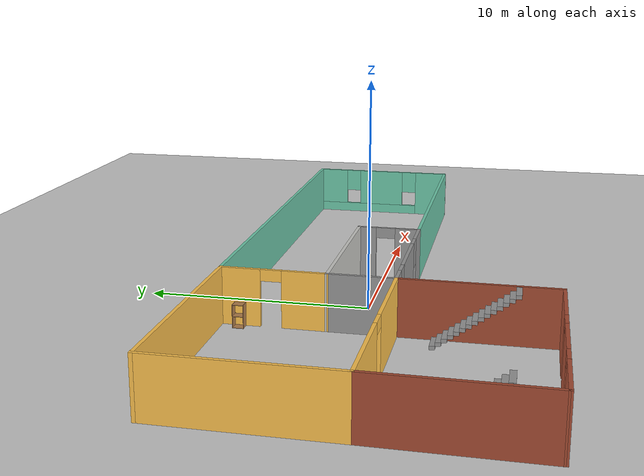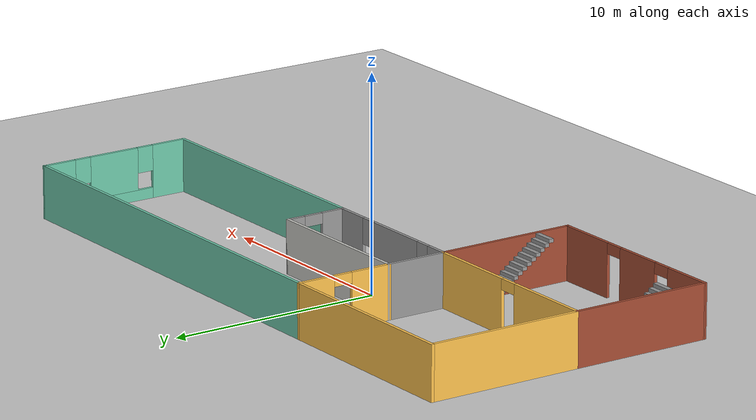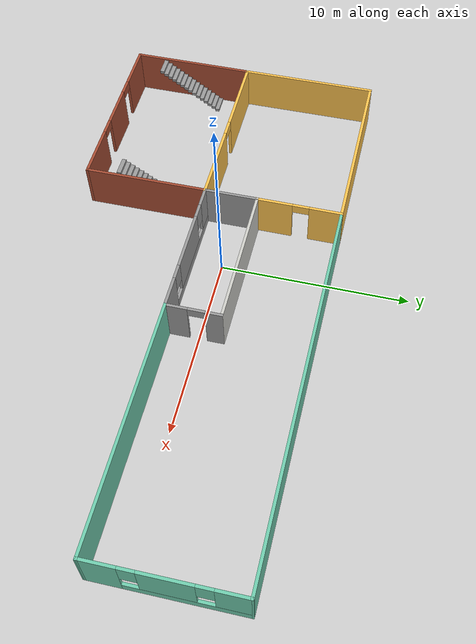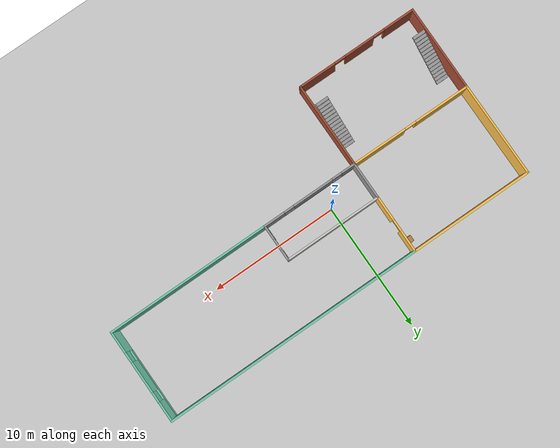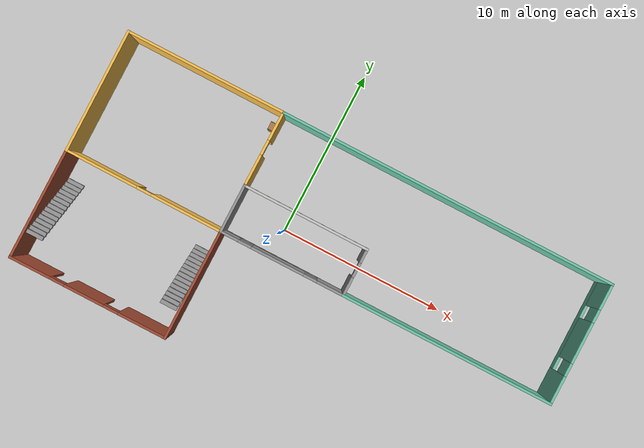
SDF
<sdf version="1.6">
 <world name="default">
  <model name="ground_plane">
   <static>1</static>
   <link name="link">
    <collision name="collision">
     <geometry><plane><normal>0 0 1</normal><size>100 100</size></plane></geometry>
     <surface>
      <contact><collide_bitmask>65535</collide_bitmask></contact>
      <friction><ode><mu>100</mu><mu2>50</mu2></ode></friction>
     </surface>
    </collision>
    <visual name="visual">
     <cast_shadows>0</cast_shadows>
     <geometry><plane><normal>0 0 1</normal><size>100 100</size></plane></geometry>
     <material>
      <script><uri>file://media/materials/scripts/gazebo.material</uri><name>Gazebo/Grey</name></script>
     </material>
    </visual>
   </link>
  </model>
  <model name="Untitled">
   <pose>2.38494 -1.21436 0 0 -0 0</pose>
   <link name="Stairs_0">
    <visual name="Stairs_0_Visual_0">
     <pose>-14.3705 -2.00287 0.083333 0 -0 0</pose>
     <geometry><box><size>1 0.233333 0.166667</size></box></geometry>
     <material>
      <script><uri>file://media/materials/scripts/gazebo.material</uri><name>Gazebo/Grey</name></script>
      <ambient>1 1 1 1</ambient>
     </material>
     <meta><layer>0</layer></meta>
    </visual>
    <collision name="Stairs_0_Collision_0">
     <geometry><box><size>1 0.233333 0.166667</size></box></geometry>
     <pose>-14.3705 -2.00287 0.083333 0 -0 0</pose>
    </collision>
    <visual name="Stairs_0_Visual_1">
     <pose>-14.3705 -2.2362 0.25 0 -0 0</pose>
     <geometry><box><size>1 0.233333 0.166667</size></box></geometry>
     <material>
      <script><uri>file://media/materials/scripts/gazebo.material</uri><name>Gazebo/Grey</name></script>
      <ambient>1 1 1 1</ambient>
     </material>
     <meta><layer>0</layer></meta>
    </visual>
    <collision name="Stairs_0_Collision_1">
     <geometry><box><size>1 0.233333 0.166667</size></box></geometry>
     <pose>-14.3705 -2.2362 0.25 0 -0 0</pose>
    </collision>
    <visual name="Stairs_0_Visual_2">
     <pose>-14.3705 -2.46954 0.416667 0 -0 0</pose>
     <geometry><box><size>1 0.233333 0.166667</size></box></geometry>
     <material>
      <script><uri>file://media/materials/scripts/gazebo.material</uri><name>Gazebo/Grey</name></script>
      <ambient>1 1 1 1</ambient>
     </material>
     <meta><layer>0</layer></meta>
    </visual>
    <collision name="Stairs_0_Collision_2">
     <geometry><box><size>1 0.233333 0.166667</size></box></geometry>
     <pose>-14.3705 -2.46954 0.416667 0 -0 0</pose>
    </collision>
    <visual name="Stairs_0_Visual_3">
     <pose>-14.3705 -2.70287 0.583333 0 -0 0</pose>
     <geometry><box><size>1 0.233333 0.166667</size></box></geometry>
     <material>
      <script><uri>file://media/materials/scripts/gazebo.material</uri><name>Gazebo/Grey</name></script>
      <ambient>1 1 1 1</ambient>
     </material>
     <meta><layer>0</layer></meta>
    </visual>
    <collision name="Stairs_0_Collision_3">
     <geometry><box><size>1 0.233333 0.166667</size></box></geometry>
     <pose>-14.3705 -2.70287 0.583333 0 -0 0</pose>
    </collision>
    <visual name="Stairs_0_Visual_4">
     <pose>-14.3705 -2.9362 0.75 0 -0 0</pose>
     <geometry><box><size>1 0.233333 0.166667</size></box></geometry>
     <material>
      <script><uri>file://media/materials/scripts/gazebo.material</uri><name>Gazebo/Grey</name></script>
      <ambient>1 1 1 1</ambient>
     </material>
     <meta><layer>0</layer></meta>
    </visual>
    <collision name="Stairs_0_Collision_4">
     <geometry><box><size>1 0.233333 0.166667</size></box></geometry>
     <pose>-14.3705 -2.9362 0.75 0 -0 0</pose>
    </collision>
    <visual name="Stairs_0_Visual_5">
     <pose>-14.3705 -3.16954 0.916667 0 -0 0</pose>
     <geometry><box><size>1 0.233333 0.166667</size></box></geometry>
     <material>
      <script><uri>file://media/materials/scripts/gazebo.material</uri><name>Gazebo/Grey</name></script>
      <ambient>1 1 1 1</ambient>
     </material>
     <meta><layer>0</layer></meta>
    </visual>
    <collision name="Stairs_0_Collision_5">
     <geometry><box><size>1 0.233333 0.166667</size></box></geometry>
     <pose>-14.3705 -3.16954 0.916667 0 -0 0</pose>
    </collision>
    <visual name="Stairs_0_Visual_6">
     <pose>-14.3705 -3.40287 1.08333 0 -0 0</pose>
     <geometry><box><size>1 0.233333 0.166667</size></box></geometry>
     <material>
      <script><uri>file://media/materials/scripts/gazebo.material</uri><name>Gazebo/Grey</name></script>
      <ambient>1 1 1 1</ambient>
     </material>
     <meta><layer>0</layer></meta>
    </visual>
    <collision name="Stairs_0_Collision_6">
     <geometry><box><size>1 0.233333 0.166667</size></box></geometry>
     <pose>-14.3705 -3.40287 1.08333 0 -0 0</pose>
    </collision>
    <visual name="Stairs_0_Visual_7">
     <pose>-14.3705 -3.6362 1.25 0 -0 0</pose>
     <geometry><box><size>1 0.233333 0.166667</size></box></geometry>
     <material>
      <script><uri>file://media/materials/scripts/gazebo.material</uri><name>Gazebo/Grey</name></script>
      <ambient>1 1 1 1</ambient>
     </material>
     <meta><layer>0</layer></meta>
    </visual>
    <collision name="Stairs_0_Collision_7">
     <geometry><box><size>1 0.233333 0.166667</size></box></geometry>
     <pose>-14.3705 -3.6362 1.25 0 -0 0</pose>
    </collision>
    <visual name="Stairs_0_Visual_8">
     <pose>-14.3705 -3.86953 1.41667 0 -0 0</pose>
     <geometry><box><size>1 0.233333 0.166667</size></box></geometry>
     <material>
      <script><uri>file://media/materials/scripts/gazebo.material</uri><name>Gazebo/Grey</name></script>
      <ambient>1 1 1 1</ambient>
     </material>
     <meta><layer>0</layer></meta>
    </visual>
    <collision name="Stairs_0_Collision_8">
     <geometry><box><size>1 0.233333 0.166667</size></box></geometry>
     <pose>-14.3705 -3.86953 1.41667 0 -0 0</pose>
    </collision>
    <visual name="Stairs_0_Visual_9">
     <pose>-14.3705 -4.10287 1.58333 0 -0 0</pose>
     <geometry><box><size>1 0.233333 0.166667</size></box></geometry>
     <material>
      <script><uri>file://media/materials/scripts/gazebo.material</uri><name>Gazebo/Grey</name></script>
      <ambient>1 1 1 1</ambient>
     </material>
     <meta><layer>0</layer></meta>
    </visual>
    <collision name="Stairs_0_Collision_9">
     <geometry><box><size>1 0.233333 0.166667</size></box></geometry>
     <pose>-14.3705 -4.10287 1.58333 0 -0 0</pose>
    </collision>
    <visual name="Stairs_0_Visual_10">
     <pose>-14.3705 -4.3362 1.75 0 -0 0</pose>
     <geometry><box><size>1 0.233333 0.166667</size></box></geometry>
     <material>
      <script><uri>file://media/materials/scripts/gazebo.material</uri><name>Gazebo/Grey</name></script>
      <ambient>1 1 1 1</ambient>
     </material>
     <meta><layer>0</layer></meta>
    </visual>
    <collision name="Stairs_0_Collision_10">
     <geometry><box><size>1 0.233333 0.166667</size></box></geometry>
     <pose>-14.3705 -4.3362 1.75 0 -0 0</pose>
    </collision>
    <visual name="Stairs_0_Visual_11">
     <pose>-14.3705 -4.56954 1.91667 0 -0 0</pose>
     <geometry><box><size>1 0.233333 0.166667</size></box></geometry>
     <material>
      <script><uri>file://media/materials/scripts/gazebo.material</uri><name>Gazebo/Grey</name></script>
      <ambient>1 1 1 1</ambient>
     </material>
     <meta><layer>0</layer></meta>
    </visual>
    <collision name="Stairs_0_Collision_11">
     <geometry><box><size>1 0.233333 0.166667</size></box></geometry>
     <pose>-14.3705 -4.56954 1.91667 0 -0 0</pose>
    </collision>
    <visual name="Stairs_0_Visual_12">
     <pose>-14.3705 -4.80287 2.08333 0 -0 0</pose>
     <geometry><box><size>1 0.233333 0.166667</size></box></geometry>
     <material>
      <script><uri>file://media/materials/scripts/gazebo.material</uri><name>Gazebo/Grey</name></script>
      <ambient>1 1 1 1</ambient>
     </material>
     <meta><layer>0</layer></meta>
    </visual>
    <collision name="Stairs_0_Collision_12">
     <geometry><box><size>1 0.233333 0.166667</size></box></geometry>
     <pose>-14.3705 -4.80287 2.08333 0 -0 0</pose>
    </collision>
    <visual name="Stairs_0_Visual_13">
     <pose>-14.3705 -5.0362 2.25 0 -0 0</pose>
     <geometry><box><size>1 0.233333 0.166667</size></box></geometry>
     <material>
      <script><uri>file://media/materials/scripts/gazebo.material</uri><name>Gazebo/Grey</name></script>
      <ambient>1 1 1 1</ambient>
     </material>
     <meta><layer>0</layer></meta>
    </visual>
    <collision name="Stairs_0_Collision_13">
     <geometry><box><size>1 0.233333 0.166667</size></box></geometry>
     <pose>-14.3705 -5.0362 2.25 0 -0 0</pose>
    </collision>
    <visual name="Stairs_0_Visual_14">
     <pose>-14.3705 -5.26954 2.41667 0 -0 0</pose>
     <geometry><box><size>1 0.233333 0.166667</size></box></geometry>
     <material>
      <script><uri>file://media/materials/scripts/gazebo.material</uri><name>Gazebo/Grey</name></script>
      <ambient>1 1 1 1</ambient>
     </material>
     <meta><layer>0</layer></meta>
    </visual>
    <collision name="Stairs_0_Collision_14">
     <geometry><box><size>1 0.233333 0.166667</size></box></geometry>
     <pose>-14.3705 -5.26954 2.41667 0 -0 0</pose>
    </collision>
   </link>
   <link name="Stairs_1">
    <visual name="Stairs_1_Visual_0">
     <pose>-6.07758 -2.00287 0.083333 0 -0 0</pose>
     <geometry><box><size>1 0.233333 0.166667</size></box></geometry>
     <material>
      <script><uri>file://media/materials/scripts/gazebo.material</uri><name>Gazebo/Grey</name></script>
      <ambient>1 1 1 1</ambient>
     </material>
     <meta><layer>0</layer></meta>
    </visual>
    <collision name="Stairs_1_Collision_0">
     <geometry><box><size>1 0.233333 0.166667</size></box></geometry>
     <pose>-6.07758 -2.00287 0.083333 0 -0 0</pose>
    </collision>
    <visual name="Stairs_1_Visual_1">
     <pose>-6.07758 -2.2362 0.25 0 -0 0</pose>
     <geometry><box><size>1 0.233333 0.166667</size></box></geometry>
     <material>
      <script><uri>file://media/materials/scripts/gazebo.material</uri><name>Gazebo/Grey</name></script>
      <ambient>1 1 1 1</ambient>
     </material>
     <meta><layer>0</layer></meta>
    </visual>
    <collision name="Stairs_1_Collision_1">
     <geometry><box><size>1 0.233333 0.166667</size></box></geometry>
     <pose>-6.07758 -2.2362 0.25 0 -0 0</pose>
    </collision>
    <visual name="Stairs_1_Visual_2">
     <pose>-6.07758 -2.46954 0.416667 0 -0 0</pose>
     <geometry><box><size>1 0.233333 0.166667</size></box></geometry>
     <material>
      <script><uri>file://media/materials/scripts/gazebo.material</uri><name>Gazebo/Grey</name></script>
      <ambient>1 1 1 1</ambient>
     </material>
     <meta><layer>0</layer></meta>
    </visual>
    <collision name="Stairs_1_Collision_2">
     <geometry><box><size>1 0.233333 0.166667</size></box></geometry>
     <pose>-6.07758 -2.46954 0.416667 0 -0 0</pose>
    </collision>
    <visual name="Stairs_1_Visual_3">
     <pose>-6.07758 -2.70287 0.583333 0 -0 0</pose>
     <geometry><box><size>1 0.233333 0.166667</size></box></geometry>
     <material>
      <script><uri>file://media/materials/scripts/gazebo.material</uri><name>Gazebo/Grey</name></script>
      <ambient>1 1 1 1</ambient>
     </material>
     <meta><layer>0</layer></meta>
    </visual>
    <collision name="Stairs_1_Collision_3">
     <geometry><box><size>1 0.233333 0.166667</size></box></geometry>
     <pose>-6.07758 -2.70287 0.583333 0 -0 0</pose>
    </collision>
    <visual name="Stairs_1_Visual_4">
     <pose>-6.07758 -2.9362 0.75 0 -0 0</pose>
     <geometry><box><size>1 0.233333 0.166667</size></box></geometry>
     <material>
      <script><uri>file://media/materials/scripts/gazebo.material</uri><name>Gazebo/Grey</name></script>
      <ambient>1 1 1 1</ambient>
     </material>
     <meta><layer>0</layer></meta>
    </visual>
    <collision name="Stairs_1_Collision_4">
     <geometry><box><size>1 0.233333 0.166667</size></box></geometry>
     <pose>-6.07758 -2.9362 0.75 0 -0 0</pose>
    </collision>
    <visual name="Stairs_1_Visual_5">
     <pose>-6.07758 -3.16954 0.916667 0 -0 0</pose>
     <geometry><box><size>1 0.233333 0.166667</size></box></geometry>
     <material>
      <script><uri>file://media/materials/scripts/gazebo.material</uri><name>Gazebo/Grey</name></script>
      <ambient>1 1 1 1</ambient>
     </material>
     <meta><layer>0</layer></meta>
    </visual>
    <collision name="Stairs_1_Collision_5">
     <geometry><box><size>1 0.233333 0.166667</size></box></geometry>
     <pose>-6.07758 -3.16954 0.916667 0 -0 0</pose>
    </collision>
    <visual name="Stairs_1_Visual_6">
     <pose>-6.07758 -3.40287 1.08333 0 -0 0</pose>
     <geometry><box><size>1 0.233333 0.166667</size></box></geometry>
     <material>
      <script><uri>file://media/materials/scripts/gazebo.material</uri><name>Gazebo/Grey</name></script>
      <ambient>1 1 1 1</ambient>
     </material>
     <meta><layer>0</layer></meta>
    </visual>
    <collision name="Stairs_1_Collision_6">
     <geometry><box><size>1 0.233333 0.166667</size></box></geometry>
     <pose>-6.07758 -3.40287 1.08333 0 -0 0</pose>
    </collision>
    <visual name="Stairs_1_Visual_7">
     <pose>-6.07758 -3.6362 1.25 0 -0 0</pose>
     <geometry><box><size>1 0.233333 0.166667</size></box></geometry>
     <material>
      <script><uri>file://media/materials/scripts/gazebo.material</uri><name>Gazebo/Grey</name></script>
      <ambient>1 1 1 1</ambient>
     </material>
     <meta><layer>0</layer></meta>
    </visual>
    <collision name="Stairs_1_Collision_7">
     <geometry><box><size>1 0.233333 0.166667</size></box></geometry>
     <pose>-6.07758 -3.6362 1.25 0 -0 0</pose>
    </collision>
    <visual name="Stairs_1_Visual_8">
     <pose>-6.07758 -3.86953 1.41667 0 -0 0</pose>
     <geometry><box><size>1 0.233333 0.166667</size></box></geometry>
     <material>
      <script><uri>file://media/materials/scripts/gazebo.material</uri><name>Gazebo/Grey</name></script>
      <ambient>1 1 1 1</ambient>
     </material>
     <meta><layer>0</layer></meta>
    </visual>
    <collision name="Stairs_1_Collision_8">
     <geometry><box><size>1 0.233333 0.166667</size></box></geometry>
     <pose>-6.07758 -3.86953 1.41667 0 -0 0</pose>
    </collision>
    <visual name="Stairs_1_Visual_9">
     <pose>-6.07758 -4.10287 1.58333 0 -0 0</pose>
     <geometry><box><size>1 0.233333 0.166667</size></box></geometry>
     <material>
      <script><uri>file://media/materials/scripts/gazebo.material</uri><name>Gazebo/Grey</name></script>
      <ambient>1 1 1 1</ambient>
     </material>
     <meta><layer>0</layer></meta>
    </visual>
    <collision name="Stairs_1_Collision_9">
     <geometry><box><size>1 0.233333 0.166667</size></box></geometry>
     <pose>-6.07758 -4.10287 1.58333 0 -0 0</pose>
    </collision>
    <visual name="Stairs_1_Visual_10">
     <pose>-6.07758 -4.3362 1.75 0 -0 0</pose>
     <geometry><box><size>1 0.233333 0.166667</size></box></geometry>
     <material>
      <script><uri>file://media/materials/scripts/gazebo.material</uri><name>Gazebo/Grey</name></script>
      <ambient>1 1 1 1</ambient>
     </material>
     <meta><layer>0</layer></meta>
    </visual>
    <collision name="Stairs_1_Collision_10">
     <geometry><box><size>1 0.233333 0.166667</size></box></geometry>
     <pose>-6.07758 -4.3362 1.75 0 -0 0</pose>
    </collision>
    <visual name="Stairs_1_Visual_11">
     <pose>-6.07758 -4.56954 1.91667 0 -0 0</pose>
     <geometry><box><size>1 0.233333 0.166667</size></box></geometry>
     <material>
      <script><uri>file://media/materials/scripts/gazebo.material</uri><name>Gazebo/Grey</name></script>
      <ambient>1 1 1 1</ambient>
     </material>
     <meta><layer>0</layer></meta>
    </visual>
    <collision name="Stairs_1_Collision_11">
     <geometry><box><size>1 0.233333 0.166667</size></box></geometry>
     <pose>-6.07758 -4.56954 1.91667 0 -0 0</pose>
    </collision>
    <visual name="Stairs_1_Visual_12">
     <pose>-6.07758 -4.80287 2.08333 0 -0 0</pose>
     <geometry><box><size>1 0.233333 0.166667</size></box></geometry>
     <material>
      <script><uri>file://media/materials/scripts/gazebo.material</uri><name>Gazebo/Grey</name></script>
      <ambient>1 1 1 1</ambient>
     </material>
     <meta><layer>0</layer></meta>
    </visual>
    <collision name="Stairs_1_Collision_12">
     <geometry><box><size>1 0.233333 0.166667</size></box></geometry>
     <pose>-6.07758 -4.80287 2.08333 0 -0 0</pose>
    </collision>
    <visual name="Stairs_1_Visual_13">
     <pose>-6.07758 -5.0362 2.25 0 -0 0</pose>
     <geometry><box><size>1 0.233333 0.166667</size></box></geometry>
     <material>
      <script><uri>file://media/materials/scripts/gazebo.material</uri><name>Gazebo/Grey</name></script>
      <ambient>1 1 1 1</ambient>
     </material>
     <meta><layer>0</layer></meta>
    </visual>
    <collision name="Stairs_1_Collision_13">
     <geometry><box><size>1 0.233333 0.166667</size></box></geometry>
     <pose>-6.07758 -5.0362 2.25 0 -0 0</pose>
    </collision>
    <visual name="Stairs_1_Visual_14">
     <pose>-6.07758 -5.26954 2.41667 0 -0 0</pose>
     <geometry><box><size>1 0.233333 0.166667</size></box></geometry>
     <material>
      <script><uri>file://media/materials/scripts/gazebo.material</uri><name>Gazebo/Grey</name></script>
      <ambient>1 1 1 1</ambient>
     </material>
     <meta><layer>0</layer></meta>
    </visual>
    <collision name="Stairs_1_Collision_14">
     <geometry><box><size>1 0.233333 0.166667</size></box></geometry>
     <pose>-6.07758 -5.26954 2.41667 0 -0 0</pose>
    </collision>
   </link>
   <link name="Wall_0">
    <pose>-1.62494 -0.395642 0 0 -0 3.14159</pose>
    <visual name="Wall_0_Visual_0">
     <pose>-3.01432 0 1.25 0 -0 0</pose>
     <geometry><box><size>1.72136 0.15 2.5</size></box></geometry>
     <material>
      <script><uri>file://media/materials/scripts/gazebo.material</uri><name>Gazebo/Grey</name></script>
      <ambient>1 1 1 1</ambient>
     </material>
     <meta><layer>0</layer></meta>
    </visual>
    <collision name="Wall_0_Collision_0">
     <geometry><box><size>1.72136 0.15 2.5</size></box></geometry>
     <pose>-3.01432 0 1.25 0 -0 0</pose>
    </collision>
    <visual name="Wall_0_Visual_1">
     <pose>0.860678 0 0.25 0 -0 0</pose>
     <geometry><box><size>6.02864 0.15 0.5</size></box></geometry>
     <material>
      <script><uri>file://media/materials/scripts/gazebo.material</uri><name>Gazebo/Grey</name></script>
      <ambient>1 1 1 1</ambient>
     </material>
     <meta><layer>0</layer></meta>
    </visual>
    <collision name="Wall_0_Collision_1">
     <geometry><box><size>6.02864 0.15 0.5</size></box></geometry>
     <pose>0.860678 0 0.25 0 -0 0</pose>
    </collision>
    <visual name="Wall_0_Visual_2">
     <pose>0.279452 0 1.5 0 -0 0</pose>
     <geometry><box><size>3.26619 0.15 2</size></box></geometry>
     <material>
      <script><uri>file://media/materials/scripts/gazebo.material</uri><name>Gazebo/Grey</name></script>
      <ambient>1 1 1 1</ambient>
     </material>
     <meta><layer>0</layer></meta>
    </visual>
    <collision name="Wall_0_Collision_2">
     <geometry><box><size>3.26619 0.15 2</size></box></geometry>
     <pose>0.279452 0 1.5 0 -0 0</pose>
    </collision>
    <visual name="Wall_0_Visual_3">
     <pose>3.29377 0 1.5 0 -0 0</pose>
     <geometry><box><size>1.16245 0.15 2</size></box></geometry>
     <material>
      <script><uri>file://media/materials/scripts/gazebo.material</uri><name>Gazebo/Grey</name></script>
      <ambient>1 1 1 1</ambient>
     </material>
     <meta><layer>0</layer></meta>
    </visual>
    <collision name="Wall_0_Collision_3">
     <geometry><box><size>1.16245 0.15 2</size></box></geometry>
     <pose>3.29377 0 1.5 0 -0 0</pose>
    </collision>
    <visual name="Wall_0_Visual_4">
     <pose>-1.75364 0 1.9 0 -0 0</pose>
     <geometry><box><size>0.8 0.15 1.2</size></box></geometry>
     <material>
      <script><uri>file://media/materials/scripts/gazebo.material</uri><name>Gazebo/Grey</name></script>
      <ambient>1 1 1 1</ambient>
     </material>
     <meta><layer>0</layer></meta>
    </visual>
    <collision name="Wall_0_Collision_4">
     <geometry><box><size>0.8 0.15 1.2</size></box></geometry>
     <pose>-1.75364 0 1.9 0 -0 0</pose>
    </collision>
    <visual name="Wall_0_Visual_5">
     <pose>2.31255 0 1.9 0 -0 0</pose>
     <geometry><box><size>0.8 0.15 1.2</size></box></geometry>
     <material>
      <script><uri>file://media/materials/scripts/gazebo.material</uri><name>Gazebo/Grey</name></script>
      <ambient>1 1 1 1</ambient>
     </material>
     <meta><layer>0</layer></meta>
    </visual>
    <collision name="Wall_0_Collision_5">
     <geometry><box><size>0.8 0.15 1.2</size></box></geometry>
     <pose>2.31255 0 1.9 0 -0 0</pose>
    </collision>
   </link>
   <link name="Wall_1">
    <collision name="Wall_1_Collision">
     <geometry><box><size>3 0.15 2.5</size></box></geometry>
     <pose>0 0 1.25 0 -0 0</pose>
    </collision>
    <visual name="Wall_1_Visual">
     <pose>0 0 1.25 0 -0 0</pose>
     <geometry><box><size>3 0.15 2.5</size></box></geometry>
     <material>
      <script><uri>file://media/materials/scripts/gazebo.material</uri><name>Gazebo/Grey</name></script>
      <ambient>1 1 1 1</ambient>
     </material>
     <meta><layer>0</layer></meta>
    </visual>
    <pose>-5.42493 1.02936 0 0 -0 1.5708</pose>
   </link>
   <link name="Wall_10">
    <collision name="Wall_10_Collision">
     <geometry><box><size>7.5 0.15 2.5</size></box></geometry>
     <pose>0 0 1.25 0 -0 0</pose>
    </collision>
    <visual name="Wall_10_Visual">
     <pose>0 0 1.25 0 -0 0</pose>
     <geometry><box><size>7.5 0.15 2.5</size></box></geometry>
     <material>
      <script><uri>file://media/materials/scripts/gazebo.material</uri><name>Gazebo/Grey</name></script>
      <ambient>1 0.764706 0.305882 1</ambient>
     </material>
     <meta><layer>0</layer></meta>
    </visual>
    <pose>-14.9969 3.32017 0 0 0 -1.5708</pose>
   </link>
   <link name="Wall_11">
    <pose>-10.2109 -0.375234 0 0 0 -0.004264</pose>
    <visual name="Wall_11_Visual_0">
     <pose>-2.64881 0 1.25 0 -0 0</pose>
     <geometry><box><size>4.42444 0.15 2.5</size></box></geometry>
     <material>
      <script><uri>file://media/materials/scripts/gazebo.material</uri><name>Gazebo/Grey</name></script>
      <ambient>1 0.764706 0.305882 1</ambient>
     </material>
     <meta><layer>0</layer></meta>
    </visual>
    <collision name="Wall_11_Collision_0">
     <geometry><box><size>4.42444 0.15 2.5</size></box></geometry>
     <pose>-2.64881 0 1.25 0 -0 0</pose>
    </collision>
    <visual name="Wall_11_Visual_1">
     <pose>2.66222 0 1.25 0 -0 0</pose>
     <geometry><box><size>4.39762 0.15 2.5</size></box></geometry>
     <material>
      <script><uri>file://media/materials/scripts/gazebo.material</uri><name>Gazebo/Grey</name></script>
      <ambient>1 0.764706 0.305882 1</ambient>
     </material>
     <meta><layer>0</layer></meta>
    </visual>
    <collision name="Wall_11_Collision_1">
     <geometry><box><size>4.39762 0.15 2.5</size></box></geometry>
     <pose>2.66222 0 1.25 0 -0 0</pose>
    </collision>
    <visual name="Wall_11_Visual_2">
     <pose>0.013411 0 2.25 0 -0 0</pose>
     <geometry><box><size>0.9 0.15 0.5</size></box></geometry>
     <material>
      <script><uri>file://media/materials/scripts/gazebo.material</uri><name>Gazebo/Grey</name></script>
      <ambient>1 0.764706 0.305882 1</ambient>
     </material>
     <meta><layer>0</layer></meta>
    </visual>
    <collision name="Wall_11_Collision_2">
     <geometry><box><size>0.9 0.15 0.5</size></box></geometry>
     <pose>0.013411 0 2.25 0 -0 0</pose>
    </collision>
   </link>
   <link name="Wall_12">
    <collision name="Wall_12_Collision">
     <geometry><box><size>6.75 0.15 2.5</size></box></geometry>
     <pose>0 0 1.25 0 -0 0</pose>
    </collision>
    <visual name="Wall_12_Visual">
     <pose>0 0 1.25 0 -0 0</pose>
     <geometry><box><size>6.75 0.15 2.5</size></box></geometry>
     <material>
      <script><uri>file://media/materials/scripts/gazebo.material</uri><name>Gazebo/Bricks</name></script>
      <ambient>1 1 1 1</ambient>
     </material>
     <meta><layer>0</layer></meta>
    </visual>
    <pose>-5.42493 -3.69564 0 0 0 -1.5708</pose>
   </link>
   <link name="Wall_13">
    <pose>-10.2249 -6.99564 0 0 -0 3.14159</pose>
    <visual name="Wall_13_Visual_0">
     <pose>-3.37186 0 1.25 0 -0 0</pose>
     <geometry><box><size>3.00628 0.15 2.5</size></box></geometry>
     <material>
      <script><uri>file://media/materials/scripts/gazebo.material</uri><name>Gazebo/Bricks</name></script>
      <ambient>1 1 1 1</ambient>
     </material>
     <meta><layer>0</layer></meta>
    </visual>
    <collision name="Wall_13_Collision_0">
     <geometry><box><size>3.00628 0.15 2.5</size></box></geometry>
     <pose>-3.37186 0 1.25 0 -0 0</pose>
    </collision>
    <visual name="Wall_13_Visual_1">
     <pose>0.239852 0 1.25 0 -0 0</pose>
     <geometry><box><size>2.41716 0.15 2.5</size></box></geometry>
     <material>
      <script><uri>file://media/materials/scripts/gazebo.material</uri><name>Gazebo/Bricks</name></script>
      <ambient>1 1 1 1</ambient>
     </material>
     <meta><layer>0</layer></meta>
    </visual>
    <collision name="Wall_13_Collision_1">
     <geometry><box><size>2.41716 0.15 2.5</size></box></geometry>
     <pose>0.239852 0 1.25 0 -0 0</pose>
    </collision>
    <visual name="Wall_13_Visual_2">
     <pose>3.61171 0 1.25 0 -0 0</pose>
     <geometry><box><size>2.52657 0.15 2.5</size></box></geometry>
     <material>
      <script><uri>file://media/materials/scripts/gazebo.material</uri><name>Gazebo/Bricks</name></script>
      <ambient>1 1 1 1</ambient>
     </material>
     <meta><layer>0</layer></meta>
    </visual>
    <collision name="Wall_13_Collision_2">
     <geometry><box><size>2.52657 0.15 2.5</size></box></geometry>
     <pose>3.61171 0 1.25 0 -0 0</pose>
    </collision>
    <visual name="Wall_13_Visual_3">
     <pose>-1.41873 0 2.25 0 -0 0</pose>
     <geometry><box><size>0.9 0.15 0.5</size></box></geometry>
     <material>
      <script><uri>file://media/materials/scripts/gazebo.material</uri><name>Gazebo/Bricks</name></script>
      <ambient>1 1 1 1</ambient>
     </material>
     <meta><layer>0</layer></meta>
    </visual>
    <collision name="Wall_13_Collision_3">
     <geometry><box><size>0.9 0.15 0.5</size></box></geometry>
     <pose>-1.41873 0 2.25 0 -0 0</pose>
    </collision>
    <visual name="Wall_13_Visual_4">
     <pose>1.89843 0 2.25 0 -0 0</pose>
     <geometry><box><size>0.9 0.15 0.5</size></box></geometry>
     <material>
      <script><uri>file://media/materials/scripts/gazebo.material</uri><name>Gazebo/Bricks</name></script>
      <ambient>1 1 1 1</ambient>
     </material>
     <meta><layer>0</layer></meta>
    </visual>
    <collision name="Wall_13_Collision_4">
     <geometry><box><size>0.9 0.15 0.5</size></box></geometry>
     <pose>1.89843 0 2.25 0 -0 0</pose>
    </collision>
   </link>
   <link name="Wall_14">
    <collision name="Wall_14_Collision">
     <geometry><box><size>6.79087 0.15 2.5</size></box></geometry>
     <pose>0 0 1.25 0 -0 0</pose>
    </collision>
    <visual name="Wall_14_Visual">
     <pose>0 0 1.25 0 -0 0</pose>
     <geometry><box><size>6.79087 0.15 2.5</size></box></geometry>
     <material>
      <script><uri>file://media/materials/scripts/gazebo.material</uri><name>Gazebo/Bricks</name></script>
      <ambient>1 1 1 1</ambient>
     </material>
     <meta><layer>0</layer></meta>
    </visual>
    <pose>-15.0109 -3.67523 0 0 -0 1.56658</pose>
   </link>
   <link name="Wall_2">
    <collision name="Wall_2_Collision">
     <geometry><box><size>7.75 0.15 2.5</size></box></geometry>
     <pose>0 0 1.25 0 -0 0</pose>
    </collision>
    <visual name="Wall_2_Visual">
     <pose>0 0 1.25 0 -0 0</pose>
     <geometry><box><size>7.75 0.15 2.5</size></box></geometry>
     <material>
      <script><uri>file://media/materials/scripts/gazebo.material</uri><name>Gazebo/CeilingTiled</name></script>
      <ambient>0.435294 0.796078 0.67451 1</ambient>
     </material>
     <meta><layer>0</layer></meta>
    </visual>
    <pose>-1.62494 2.45436 0 0 -0 0</pose>
   </link>
   <link name="Wall_3">
    <pose>2.17507 1.02936 0 0 0 -1.5708</pose>
    <visual name="Wall_3_Visual_0">
     <pose>-1.04983 0 1.25 0 -0 0</pose>
     <geometry><box><size>0.900335 0.15 2.5</size></box></geometry>
     <material>
      <script><uri>file://media/materials/scripts/gazebo.material</uri><name>Gazebo/Grey</name></script>
      <ambient>1 1 1 1</ambient>
     </material>
     <meta><layer>0</layer></meta>
    </visual>
    <collision name="Wall_3_Collision_0">
     <geometry><box><size>0.900335 0.15 2.5</size></box></geometry>
     <pose>-1.04983 0 1.25 0 -0 0</pose>
    </collision>
    <visual name="Wall_3_Visual_1">
     <pose>0.900168 0 1.25 0 -0 0</pose>
     <geometry><box><size>1.19966 0.15 2.5</size></box></geometry>
     <material>
      <script><uri>file://media/materials/scripts/gazebo.material</uri><name>Gazebo/Grey</name></script>
      <ambient>1 1 1 1</ambient>
     </material>
     <meta><layer>0</layer></meta>
    </visual>
    <collision name="Wall_3_Collision_1">
     <geometry><box><size>1.19966 0.15 2.5</size></box></geometry>
     <pose>0.900168 0 1.25 0 -0 0</pose>
    </collision>
    <visual name="Wall_3_Visual_2">
     <pose>-0.149665 0 2.25 0 -0 0</pose>
     <geometry><box><size>0.9 0.15 0.5</size></box></geometry>
     <material>
      <script><uri>file://media/materials/scripts/gazebo.material</uri><name>Gazebo/Grey</name></script>
      <ambient>1 1 1 1</ambient>
     </material>
     <meta><layer>0</layer></meta>
    </visual>
    <collision name="Wall_3_Collision_2">
     <geometry><box><size>0.9 0.15 0.5</size></box></geometry>
     <pose>-0.149665 0 2.25 0 -0 0</pose>
    </collision>
   </link>
   <link name="Wall_4">
    <collision name="Wall_4_Collision">
     <geometry><box><size>13 0.15 2.5</size></box></geometry>
     <pose>0 0 1.25 0 -0 0</pose>
    </collision>
    <visual name="Wall_4_Visual">
     <pose>0 0 1.25 0 -0 0</pose>
     <geometry><box><size>13 0.15 2.5</size></box></geometry>
     <material>
      <script><uri>file://media/materials/scripts/gazebo.material</uri><name>Gazebo/Grey</name></script>
      <ambient>0.435294 0.796078 0.67451 1</ambient>
     </material>
     <meta><layer>0</layer></meta>
    </visual>
    <pose>8.60007 -0.395642 0 0 -0 0</pose>
   </link>
   <link name="Wall_5">
    <pose>15.0158 3.29977 0 0 -0 1.5733</pose>
    <visual name="Wall_5_Visual_0">
     <pose>-2.87785 0 1.25 0 -0 0</pose>
     <geometry><box><size>1.78514 0.15 2.5</size></box></geometry>
     <material>
      <script><uri>file://media/materials/scripts/gazebo.material</uri><name>Gazebo/Grey</name></script>
      <ambient>0.435294 0.796078 0.67451 1</ambient>
     </material>
     <meta><layer>0</layer></meta>
    </visual>
    <collision name="Wall_5_Collision_0">
     <geometry><box><size>1.78514 0.15 2.5</size></box></geometry>
     <pose>-2.87785 0 1.25 0 -0 0</pose>
    </collision>
    <visual name="Wall_5_Visual_1">
     <pose>0.89257 0 0.25 0 -0 0</pose>
     <geometry><box><size>5.7557 0.15 0.5</size></box></geometry>
     <material>
      <script><uri>file://media/materials/scripts/gazebo.material</uri><name>Gazebo/Grey</name></script>
      <ambient>0.435294 0.796078 0.67451 1</ambient>
     </material>
     <meta><layer>0</layer></meta>
    </visual>
    <collision name="Wall_5_Collision_1">
     <geometry><box><size>5.7557 0.15 0.5</size></box></geometry>
     <pose>0.89257 0 0.25 0 -0 0</pose>
    </collision>
    <visual name="Wall_5_Visual_2">
     <pose>0.073094 0 1.5 0 -0 0</pose>
     <geometry><box><size>2.51674 0.15 2</size></box></geometry>
     <material>
      <script><uri>file://media/materials/scripts/gazebo.material</uri><name>Gazebo/Grey</name></script>
      <ambient>0.435294 0.796078 0.67451 1</ambient>
     </material>
     <meta><layer>0</layer></meta>
    </visual>
    <collision name="Wall_5_Collision_2">
     <geometry><box><size>2.51674 0.15 2</size></box></geometry>
     <pose>0.073094 0 1.5 0 -0 0</pose>
    </collision>
    <visual name="Wall_5_Visual_3">
     <pose>2.95094 0 1.5 0 -0 0</pose>
     <geometry><box><size>1.63895 0.15 2</size></box></geometry>
     <material>
      <script><uri>file://media/materials/scripts/gazebo.material</uri><name>Gazebo/Grey</name></script>
      <ambient>0.435294 0.796078 0.67451 1</ambient>
     </material>
     <meta><layer>0</layer></meta>
    </visual>
    <collision name="Wall_5_Collision_3">
     <geometry><box><size>1.63895 0.15 2</size></box></geometry>
     <pose>2.95094 0 1.5 0 -0 0</pose>
    </collision>
    <visual name="Wall_5_Visual_4">
     <pose>-1.58528 0 1.9 0 -0 0</pose>
     <geometry><box><size>0.8 0.15 1.2</size></box></geometry>
     <material>
      <script><uri>file://media/materials/scripts/gazebo.material</uri><name>Gazebo/Grey</name></script>
      <ambient>0.435294 0.796078 0.67451 1</ambient>
     </material>
     <meta><layer>0</layer></meta>
    </visual>
    <collision name="Wall_5_Collision_4">
     <geometry><box><size>0.8 0.15 1.2</size></box></geometry>
     <pose>-1.58528 0 1.9 0 -0 0</pose>
    </collision>
    <visual name="Wall_5_Visual_5">
     <pose>1.73147 0 1.9 0 -0 0</pose>
     <geometry><box><size>0.8 0.15 1.2</size></box></geometry>
     <material>
      <script><uri>file://media/materials/scripts/gazebo.material</uri><name>Gazebo/Grey</name></script>
      <ambient>0.435294 0.796078 0.67451 1</ambient>
     </material>
     <meta><layer>0</layer></meta>
    </visual>
    <collision name="Wall_5_Collision_5">
     <geometry><box><size>0.8 0.15 1.2</size></box></geometry>
     <pose>1.73147 0 1.9 0 -0 0</pose>
    </collision>
   </link>
   <link name="Wall_6">
    <collision name="Wall_6_Collision">
     <geometry><box><size>20.5 0.15 2.5</size></box></geometry>
     <pose>0 0 1.25 0 -0 0</pose>
    </collision>
    <visual name="Wall_6_Visual">
     <pose>0 0 1.25 0 -0 0</pose>
     <geometry><box><size>20.5 0.15 2.5</size></box></geometry>
     <material>
      <script><uri>file://media/materials/scripts/gazebo.material</uri><name>Gazebo/Grey</name></script>
      <ambient>0.435294 0.796078 0.67451 1</ambient>
     </material>
     <meta><layer>0</layer></meta>
    </visual>
    <pose>4.83159 6.99517 0 0 -0 3.14159</pose>
   </link>
   <link name="Wall_7">
    <pose>-5.41092 4.72477 0 0 0 -1.57697</pose>
    <visual name="Wall_7_Visual_0">
     <pose>-1.44501 0 1.25 0 -0 0</pose>
     <geometry><box><size>1.80152 0.15 2.5</size></box></geometry>
     <material>
      <script><uri>file://media/materials/scripts/gazebo.material</uri><name>Gazebo/Grey</name></script>
      <ambient>1 0.764706 0.305882 1</ambient>
     </material>
     <meta><layer>0</layer></meta>
    </visual>
    <collision name="Wall_7_Collision_0">
     <geometry><box><size>1.80152 0.15 2.5</size></box></geometry>
     <pose>-1.44501 0 1.25 0 -0 0</pose>
    </collision>
    <visual name="Wall_7_Visual_1">
     <pose>1.35076 0 1.25 0 -0 0</pose>
     <geometry><box><size>1.99003 0.15 2.5</size></box></geometry>
     <material>
      <script><uri>file://media/materials/scripts/gazebo.material</uri><name>Gazebo/Grey</name></script>
      <ambient>1 0.764706 0.305882 1</ambient>
     </material>
     <meta><layer>0</layer></meta>
    </visual>
    <collision name="Wall_7_Collision_1">
     <geometry><box><size>1.99003 0.15 2.5</size></box></geometry>
     <pose>1.35076 0 1.25 0 -0 0</pose>
    </collision>
    <visual name="Wall_7_Visual_2">
     <pose>-0.094254 0 2.25 0 -0 0</pose>
     <geometry><box><size>0.9 0.15 0.5</size></box></geometry>
     <material>
      <script><uri>file://media/materials/scripts/gazebo.material</uri><name>Gazebo/Grey</name></script>
      <ambient>1 0.764706 0.305882 1</ambient>
     </material>
     <meta><layer>0</layer></meta>
    </visual>
    <collision name="Wall_7_Collision_2">
     <geometry><box><size>0.9 0.15 0.5</size></box></geometry>
     <pose>-0.094254 0 2.25 0 -0 0</pose>
    </collision>
   </link>
   <link name="Wall_9">
    <collision name="Wall_9_Collision">
     <geometry><box><size>9.75 0.15 2.5</size></box></geometry>
     <pose>0 0 1.25 0 -0 0</pose>
    </collision>
    <visual name="Wall_9_Visual">
     <pose>0 0 1.25 0 -0 0</pose>
     <geometry><box><size>9.75 0.15 2.5</size></box></geometry>
     <material>
      <script><uri>file://media/materials/scripts/gazebo.material</uri><name>Gazebo/Grey</name></script>
      <ambient>1 0.764706 0.305882 1</ambient>
     </material>
     <meta><layer>0</layer></meta>
    </visual>
    <pose>-10.1969 6.99517 0 0 -0 3.14159</pose>
   </link>
   <static>1</static>
  </model>
  <model name="cabinet">
   <static>1</static>
   <link name="cabinet_bottom_plate">
    <inertial>
     <pose>0 0 -1 0 -0 0</pose>
     <inertia><ixx>2.05</ixx><ixy>0</ixy><ixz>0</ixz><iyy>2.05</iyy><iyz>0</iyz><izz>2.05</izz></inertia>
     <mass>25</mass>
    </inertial>
    <collision name="cabinet_bottom_plate_geom">
     <pose>0 0 0.01 0 -0 0</pose>
     <geometry><box><size>0.45 0.45 0.02</size></box></geometry>
    </collision>
    <visual name="cabinet_bottom_plate_geom_visual">
     <pose>0 0 0.01 0 -0 0</pose>
     <geometry><box><size>0.45 0.45 0.02</size></box></geometry>
     <material>
      <script><uri>file://media/materials/scripts/gazebo.material</uri><name>Gazebo/Wood</name></script>
     </material>
    </visual>
    <collision name="cabinet_bottom_plate_geom_cabinet_back_plate">
     <pose>0.235 0 0.51 0 -0 0</pose>
     <geometry><box><size>0.02 0.45 1.02</size></box></geometry>
    </collision>
    <visual name="cabinet_bottom_plate_geom_cabinet_back_plate_visual">
     <pose>0.235 0 0.51 0 -0 0</pose>
     <geometry><box><size>0.02 0.45 1.02</size></box></geometry>
     <material>
      <script><uri>file://media/materials/scripts/gazebo.material</uri><name>Gazebo/Wood</name></script>
     </material>
    </visual>
    <collision name="cabinet_bottom_plate_geom_cabinet_left_plate">
     <pose>0 0.235 0.51 0 -0 0</pose>
     <geometry><box><size>0.45 0.02 1.02</size></box></geometry>
    </collision>
    <visual name="cabinet_bottom_plate_geom_cabinet_left_plate_visual">
     <pose>0 0.235 0.51 0 -0 0</pose>
     <geometry><box><size>0.45 0.02 1.02</size></box></geometry>
     <material>
      <script><uri>file://media/materials/scripts/gazebo.material</uri><name>Gazebo/Wood</name></script>
     </material>
    </visual>
    <collision name="cabinet_bottom_plate_geom_cabinet_middle_plate">
     <pose>0 0 0.51 0 -0 0</pose>
     <geometry><box><size>0.45 0.45 0.02</size></box></geometry>
    </collision>
    <visual name="cabinet_bottom_plate_geom_cabinet_middle_plate_visual">
     <pose>0 0 0.51 0 -0 0</pose>
     <geometry><box><size>0.45 0.45 0.02</size></box></geometry>
     <material>
      <script><uri>file://media/materials/scripts/gazebo.material</uri><name>Gazebo/Wood</name></script>
     </material>
    </visual>
    <collision name="cabinet_bottom_plate_geom_cabinet_right_plate">
     <pose>0 -0.235 0.51 0 -0 0</pose>
     <geometry><box><size>0.45 0.02 1.02</size></box></geometry>
    </collision>
    <visual name="cabinet_bottom_plate_geom_cabinet_right_plate_visual">
     <pose>0 -0.235 0.51 0 -0 0</pose>
     <geometry><box><size>0.45 0.02 1.02</size></box></geometry>
     <material>
      <script><uri>file://media/materials/scripts/gazebo.material</uri><name>Gazebo/Wood</name></script>
     </material>
    </visual>
    <collision name="cabinet_bottom_plate_geom_cabinet_top_plate">
     <pose>0 0 1.01 0 -0 0</pose>
     <geometry><box><size>0.45 0.45 0.02</size></box></geometry>
    </collision>
    <visual name="cabinet_bottom_plate_geom_cabinet_top_plate_visual">
     <pose>0 0 1.01 0 -0 0</pose>
     <geometry><box><size>0.45 0.45 0.02</size></box></geometry>
     <material>
      <script><uri>file://media/materials/scripts/gazebo.material</uri><name>Gazebo/Wood</name></script>
     </material>
    </visual>
   </link>
   <pose>-3.30088 4.92712 0 0 -0 0</pose>
  </model>
 </world>
</sdf>
